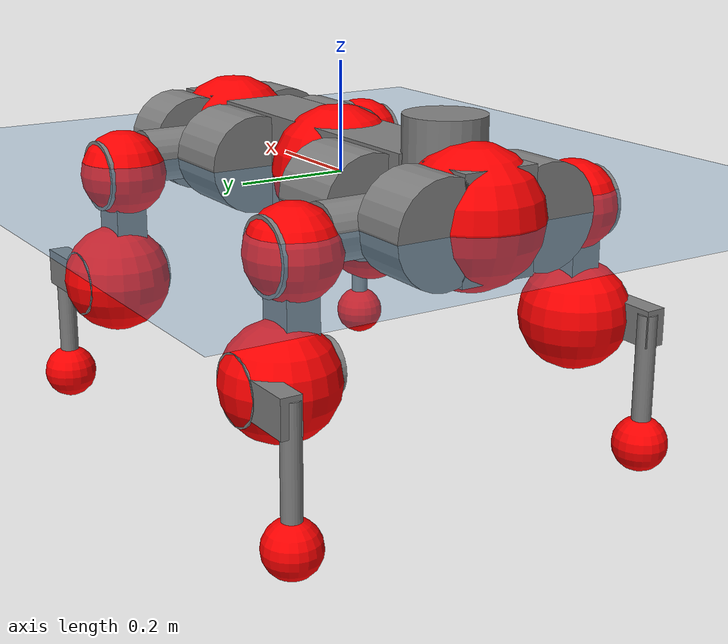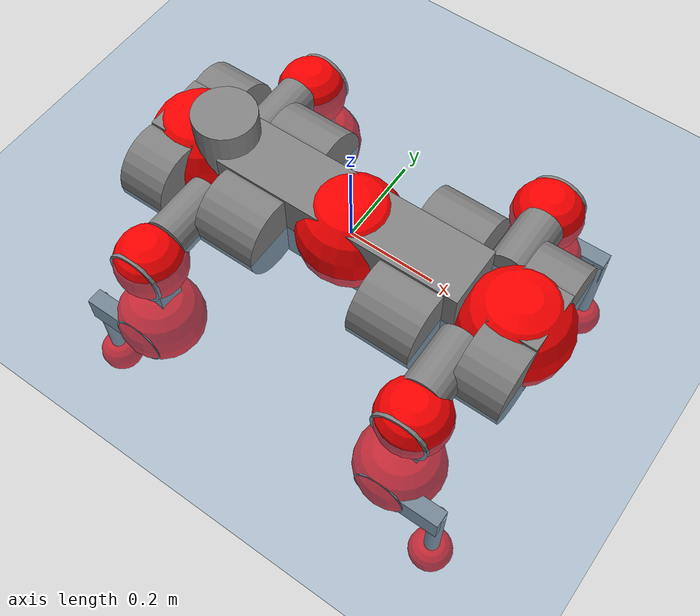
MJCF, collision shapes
<mujoco model="anymal_c">
  <compiler angle="radian" assetdir="assets" balanceinertia="true" inertiafromgeom="false"/>

  <option timestep="0.005" density="1.2" viscosity="2e-05"/>

  <size nkey="1"/>

  <visual>
    <quality shadowsize="8192"/>
    <map shadowclip="0.5"/>
  </visual>

  <default>
    <default class="/">
      <material specular="0" shininess="0.25"/>
      <geom contype="0" conaffinity="0" group="1" solref="-1000 -80"/>
      <site size="0.01 0.005 0.005" group="5"/>
      <general forcelimited="true" forcerange="-80 80" biastype="affine" gainprm="80" biasprm="0 -80 -2"/>
      <default class="anymal_c">
        <joint armature="0.01" damping="0.01" frictionloss="0.1"/>
        <default class="visual">
          <geom type="mesh" group="2"/>
          <default class="visual_zflip"/>
        </default>
        <default class="collision">
          <geom type="cylinder" group="3"/>
          <default class="foot">
            <geom size="0.03 0 0" type="sphere" condim="6" priority="1" friction="0.8 0.02 0.01" solimp="0.015 1 0.03"/>
          </default>
        </default>
      </default>
      <default class="reward_collision_sphere">
        <geom group="5" rgba="1 0 0 1"/>
      </default>
    </default>
  </default>

  <asset>
    <texture type="skybox" colorspace="auto" name="//unnamed_texture_0" builtin="gradient" rgb1="0.95 0.95 0.95" rgb2="0.95 0.95 0.95" width="100" height="600"/>
    <texture type="2d" colorspace="auto" name="texplane" builtin="checker" rgb1="0.345 0.575 0.748" rgb2="0.345 0.575 0.748" markrgb="1 1 1" width="512" height="512"/>
    <texture type="2d" colorspace="linear" name="base" file="base.png"/>
    <texture type="2d" colorspace="linear" name="top_shell" file="top_shell.png"/>
    <texture type="2d" colorspace="linear" name="bottom_shell" file="bottom_shell.png"/>
    <texture type="2d" colorspace="linear" name="remote" file="remote.png"/>
    <texture type="2d" colorspace="linear" name="hatch" file="hatch.png"/>
    <texture type="2d" colorspace="linear" name="handle" file="handle.png"/>
    <texture type="2d" colorspace="linear" name="face" file="face.png"/>
    <texture type="2d" colorspace="linear" name="battery" file="battery.png"/>
    <texture type="2d" colorspace="linear" name="lidar_cage" file="lidar_cage.png"/>
    <texture type="2d" colorspace="linear" name="depth_camera" file="depth_camera.png"/>
    <texture type="2d" colorspace="linear" name="wide_angle_camera" file="wide_angle_camera.png"/>
    <texture type="2d" colorspace="linear" name="lidar" file="lidar.png"/>
    <texture type="2d" colorspace="linear" name="drive" file="drive.png"/>
    <texture type="2d" colorspace="linear" name="hip_l" file="hip_l.png"/>
    <texture type="2d" colorspace="linear" name="shank_l" file="shank_l.png"/>
    <texture type="2d" colorspace="linear" name="foot" file="foot.png"/>
    <texture type="2d" colorspace="linear" name="thigh" file="thigh.png"/>
    <texture type="2d" colorspace="linear" name="shank_r" file="shank_r.png"/>
    <texture type="2d" colorspace="linear" name="hip_r" file="hip_r.png"/>
    <material name="MatPlane" class="/" texture="texplane" texuniform="true" texrepeat="2 2" specular="0.9" shininess="0.5"/>
    <material name="black_plastic" class="/" rgba="0.007 0.007 0.007 1"/>
    <material name="green" class="/" rgba="0.052 0.178 0.033 1"/>
    <material name="red" class="/" rgba="0.178 0.006 0.005 1"/>
    <material name="yellow" class="/" rgba="0.178 0.119 0.006 1"/>
    <material name="lwl" class="/" rgba="0.8 0.8 0.8 1"/>
    <material name="base" class="/" texture="base"/>
    <material name="top_shell" class="/" texture="top_shell"/>
    <material name="bottom_shell" class="/" texture="bottom_shell"/>
    <material name="hip_l" class="/" texture="hip_l"/>
    <material name="thigh" class="/" texture="thigh"/>
    <material name="shank_l" class="/" texture="shank_l"/>
    <material name="foot" class="/" texture="foot"/>
    <material name="hip_r" class="/" texture="hip_r"/>
    <material name="shank" class="/" texture="shank_r"/>
    <material name="hatch" class="/" texture="hatch"/>
    <material name="remote" class="/" texture="remote"/>
    <material name="handle" class="/" texture="handle"/>
    <material name="face" class="/" texture="face"/>
    <material name="depth_camera" class="/" texture="depth_camera"/>
    <material name="wide_angle_camera" class="/" texture="wide_angle_camera"/>
    <material name="battery" class="/" texture="battery"/>
    <material name="lidar_cage" class="/" texture="lidar_cage"/>
    <material name="lidar" class="/" texture="lidar"/>
    <material name="drive" class="/" texture="drive"/>
    <mesh name="base_0" class="/" file="base_0.obj"/>
    <mesh name="base_1" class="/" file="base_1.obj"/>
    <mesh name="base_2" class="/" file="base_2.obj"/>
    <mesh name="base_3" class="/" file="base_3.obj"/>
    <mesh name="base_4" class="/" file="base_4.obj"/>
    <mesh name="base_5" class="/" file="base_5.obj"/>
    <mesh name="top_shell" class="/" file="top_shell.obj"/>
    <mesh name="bottom_shell" class="/" file="bottom_shell.obj"/>
    <mesh name="remote" class="/" file="remote.obj"/>
    <mesh name="handle" class="/" file="handle.obj"/>
    <mesh name="face" class="/" file="face.obj"/>
    <mesh name="wide_angle_camera" class="/" file="wide_angle_camera.obj"/>
    <mesh name="depth_camera" class="/" file="depth_camera.obj"/>
    <mesh name="battery" class="/" file="battery.obj"/>
    <mesh name="lidar_cage" class="/" file="lidar_cage.obj"/>
    <mesh name="lidar" class="/" file="lidar.obj"/>
    <mesh name="drive" class="/" file="drive.obj"/>
    <mesh name="hip_l" class="/" file="hip_l.obj"/>
    <mesh name="thigh" class="/" file="thigh.obj"/>
    <mesh name="shank_l" class="/" file="shank_l.obj"/>
    <mesh name="foot" class="/" file="foot.obj"/>
    <mesh name="hip_r" class="/" file="hip_r.obj"/>
    <mesh name="hatch" class="/" file="hatch.obj"/>
    <mesh name="shank_r" class="/" file="shank_r.obj"/>
  </asset>

  <worldbody>
    <geom name="floor" class="/" size="100 100 0.125" type="plane" group="0" material="MatPlane"/>
    <light name="toplight_shadow" class="/" pos="0 0 5" dir="0.0990148 0.0990148 -0.990148" type="directional" ambient="0.04 0.04 0.04" diffuse="0.55 0.55 0.55" specular="0.12 0.12 0.12"/>
    <light name="toplight_fill" class="/" pos="0 0 5" dir="0.0990148 0.0990148 -0.990148" type="directional" castshadow="false" ambient="0.04 0.04 0.04" diffuse="0.3 0.3 0.3" specular="0.08 0.08 0.08"/>
    <body name="trunk" childclass="anymal_c" pos="-0.00161679 0.00673028 0.00233719" quat="0.999994 0.000511131 -0.00119901 0.00313538">
      <inertial pos="0.0075309 0.0116372 0.0264035" quat="0.483511 0.489835 0.511462 0.514476" mass="20.0535" diaginertia="0.423834 4.25521 0.0361323"/>
      <joint name="//unnamed_joint_0" type="free" armature="0" damping="0" frictionloss="0"/>
      <geom name="//unnamed_geom_1" class="visual" material="green" mesh="base_0"/>
      <geom name="//unnamed_geom_2" class="visual" material="yellow" mesh="base_1"/>
      <geom name="//unnamed_geom_3" class="visual" material="red" mesh="base_2"/>
      <geom name="//unnamed_geom_4" class="visual" material="black_plastic" mesh="base_3"/>
      <geom name="//unnamed_geom_5" class="visual" material="lwl" mesh="base_4"/>
      <geom name="//unnamed_geom_6" class="visual" material="base" mesh="base_5"/>
      <geom name="trunk_1" class="collision" size="0.291499 0.0703618 0.0904652" type="box"/>
      <geom name="trunk_2" class="collision" size="0.0904652 0.0728748" pos="0.189845 0.101268 0" quat="0.707107 0 0.707107 0"/>
      <geom name="trunk_3" class="collision" size="0.0904652 0.0728748" pos="-0.189845 0.101268 0" quat="0.707107 0 0.707107 0"/>
      <geom name="trunk_4" class="collision" size="0.0904652 0.0728748" pos="0.189845 -0.101268 0" quat="0.707107 0 0.707107 0"/>
      <geom name="trunk_5" class="collision" size="0.0904652 0.0728748" pos="-0.189845 -0.101268 0" quat="0.707107 0 0.707107 0"/>
      <geom name="//unnamed_geom_12" class="visual" material="top_shell" mesh="top_shell"/>
      <geom name="//unnamed_geom_13" class="visual" material="bottom_shell" mesh="bottom_shell"/>
      <geom name="//unnamed_geom_14" class="visual" material="remote" mesh="remote"/>
      <geom name="//unnamed_geom_15" class="visual" material="handle" mesh="handle"/>
      <geom name="//unnamed_geom_16" class="visual" pos="0.361796 0 0" quat="1 0 0 0" material="face" mesh="face"/>
      <geom name="trunk_6" class="collision" size="0.0552843 0.0703618 0.0904652" pos="0.409803 0 0" type="box"/>
      <geom name="//unnamed_geom_18" class="collision" size="0.0904652 0.0552843" pos="0.409803 0.101268 0" quat="0.707107 0 0.707107 0"/>
      <geom name="//unnamed_geom_19" class="collision" size="0.0904652 0.0552843" pos="0.409803 -0.101268 0" quat="0.707107 0 0.707107 0"/>
      <geom name="//unnamed_geom_20" class="visual" pos="0.402944 0 -0.018978" quat="0.965926 0 0.258819 0" material="depth_camera" mesh="depth_camera"/>
      <geom name="//unnamed_geom_21" class="visual" pos="0.447772 0 0.0104187" material="wide_angle_camera" mesh="wide_angle_camera"/>
      <geom name="//unnamed_geom_22" class="visual_zflip" pos="-0.361796 0 0" quat="0 0 0 1" material="face" mesh="face"/>
      <geom name="trunk_7" class="collision" size="0.0552843 0.0703618 0.0904652" pos="-0.409803 0 0" quat="0 0 0 1" type="box"/>
      <geom name="//unnamed_geom_24" class="collision" size="0.0904652 0.0552843" pos="-0.409803 -0.101268 0" quat="0 -0.707107 0 0.707107"/>
      <geom name="//unnamed_geom_25" class="collision" size="0.0904652 0.0552843" pos="-0.409803 0.101268 0" quat="0 -0.707107 0 0.707107"/>
      <geom name="//unnamed_geom_26" class="visual" pos="-0.402944 0 -0.018978" quat="0 -0.258819 0 0.965926" material="depth_camera" mesh="depth_camera"/>
      <geom name="//unnamed_geom_27" class="visual_zflip" pos="-0.447772 0 0.0104187" quat="0 0 0 1" material="wide_angle_camera" mesh="wide_angle_camera"/>
      <geom name="//unnamed_geom_28" class="visual" material="battery" mesh="battery"/>
      <geom name="//unnamed_geom_29" class="visual" pos="0 0.118137 0.0215622" quat="0.683013 -0.183013 0.183013 0.683013" material="depth_camera" mesh="depth_camera"/>
      <geom name="//unnamed_geom_30" class="visual" pos="0 -0.118137 0.0215622" quat="0.683013 0.183013 0.183013 -0.683013" material="depth_camera" mesh="depth_camera"/>
      <geom name="//unnamed_geom_31" class="visual" pos="-0.317717 0 0.0511537" quat="1 0 0 0" material="lidar_cage" mesh="lidar_cage"/>
      <geom name="trunk_8" class="collision" size="0.0703618 0.0603102" pos="-0.317717 0 0.0929118"/>
      <geom name="//unnamed_geom_33" class="visual" pos="-0.317717 0.000225446 0.0989667" quat="0.707107 0 0 -0.707107" material="lidar" mesh="lidar"/>
      <geom name="//unnamed_geom_34" class="visual" pos="0.261768 0.150189 1.295e-08" quat="0.258819 0.965926 0 0" material="drive" mesh="drive"/>
      <geom name="//unnamed_geom_35" class="visual" pos="0.261768 -0.150189 -1.295e-08" quat="0.258819 -0.965926 0 0" material="drive" mesh="drive"/>
      <geom name="//unnamed_geom_36" class="visual" pos="-0.261768 0.150189 -1.295e-08" quat="0 0 0.965926 -0.258819" material="drive" mesh="drive"/>
      <geom name="//unnamed_geom_37" class="visual" pos="-0.261768 -0.150189 1.295e-08" quat="0 0 -0.965926 -0.258819" material="drive" mesh="drive"/>
      <geom name="//unnamed_geom_38" class="visual" pos="0.101251 0 0.0508057" quat="1 0 0 0" material="hatch" mesh="hatch"/>
      <geom name="//unnamed_geom_39" class="reward_collision_sphere" size="0.12062"/>
      <geom name="//unnamed_geom_40" class="reward_collision_sphere" size="0.12062" pos="0.392782 0 0"/>
      <geom name="//unnamed_geom_41" class="reward_collision_sphere" size="0.12062" pos="-0.392782 0 0"/>
      <site name="imu" pos="0.213937 0.0182689 0.0384547" size="0.0100517"/>
      <camera name="track" pos="0 -2.89338 0" quat="0.707107 0.707107 0 0" mode="trackcom"/>
      <camera name="ego_camera" pos="0.392782 0 -0.0278387" quat="-0.5 -0.5 0.5 0.5"/>
      <body name="LF_HIP" pos="0.262788 0.151326 -0.000671836" quat="0.259426 0.965763 0.000504505 -0.000296524">
        <inertial pos="0.049166 -0.0132139 -0.00435352" quat="-0.0708536 0.696682 -0.122302 0.703318" mass="2.84678" diaginertia="0.00289174 0.0324527 0.000522113"/>
        <joint name="LF_HAA" pos="0 0 0" axis="0.999908 -0.0133232 0.00250919" range="-0.619111 0.495492" armature="0.00996406" damping="0.0189406" frictionloss="0.0925678"/>
        <geom name="//unnamed_geom_42" class="visual" pos="0 0.000761791 -0.000125124" quat="0.258819 -0.965926 0 0" material="hip_l" mesh="hip_l"/>
        <geom name="//unnamed_geom_43" class="visual" pos="0.0522837 -0.0706416 -0.0352322" quat="0.183013 -0.683013 0.683013 0.183013" material="drive" mesh="drive"/>
        <geom name="//unnamed_geom_44" class="collision" size="0.0502585 0.0703618" pos="0.0522837 -0.0173021 -0.00480566" quat="-0.353553 -0.612372 0.612372 -0.353553"/>
        <body name="LF_THIGH" pos="0.0435673 -0.110119 -0.0309277" quat="0.182595 -0.678776 0.68681 0.184973">
          <inertial pos="0.0255197 -0.0120389 -0.170605" quat="0.991953 -0.0144507 -0.0779718 0.0986955" mass="2.97698" diaginertia="0.017524 0.165215 0.0006994"/>
          <joint name="LF_HFE" pos="0 0 0" axis="0.999378 0.0214508 0.0279894" range="-3.00142 3.35296" armature="0.00413647" damping="0.0109327" frictionloss="0.127593"/>
          <geom name="//unnamed_geom_45" class="visual" pos="-0.0114172 -1.79908e-05 0" quat="0.707107 0 0 -0.707107" material="thigh" mesh="thigh"/>
          <geom name="//unnamed_geom_46" class="collision" size="0.065336 0.0402068" pos="0.034914 0 0" quat="0.5 0.5 -0.5 -0.5"/>
          <geom name="//unnamed_geom_47" class="collision" size="0.0376938 0.0301551 0.142044" pos="0.0261855 0 -0.0983501" quat="0.707107 0 0 -0.707107" type="box"/>
          <geom name="//unnamed_geom_48" class="visual" pos="0.0875468 0 -0.198351" quat="1 0 0 0" material="drive" mesh="drive"/>
          <geom name="//unnamed_geom_49" class="collision" size="0.0502585 0.0703618" pos="0.0264473 0 -0.198351" quat="0.707107 0 0.707107 0"/>
          <geom name="//unnamed_geom_50" class="reward_collision_sphere" size="0.0804135" pos="0.0218212 0 0"/>
          <body name="LF_SHANK" pos="0.0865588 -0.00127209 -0.201985" quat="1 0.000559516 -0.000309428 0.000117628">
            <inertial pos="0.0146324 -0.0823779 -0.0476044" quat="0.993907 -0.104782 0.00374597 -0.0339853" mass="0.622087" diaginertia="0.00556851 0.054755 0.000195455"/>
            <joint name="LF_KFE" pos="0 0 0" axis="0.999965 0.00837043 -0.000502893" range="-3.38365 2.97215" armature="0.0129709" damping="0.0544529" frictionloss="0.0875583"/>
            <geom name="//unnamed_geom_51" class="visual" pos="-0.00372289 -0.0198506 0" quat="0.707107 0 0 -0.707107" material="shank_l" mesh="shank_l"/>
            <geom name="LF_kfe_act" class="collision" size="0.0603102 0.0201034" pos="0.017457 0 0" quat="0.5 0.5 -0.5 -0.5"/>
            <geom name="//unnamed_geom_53" class="collision" size="0.0577962 0.0339245 0.0190982" pos="0.017457 -0.0831832 0" quat="0.5 0.5 -0.5 -0.5" type="box"/>
            <geom name="//unnamed_geom_54" class="visual" pos="0.0113916 -0.133633 -0.235217" quat="0.382683 0 0 -0.92388" material="foot" mesh="foot"/>
            <geom name="LF_calf" class="collision" size="0.0175905 0.141982" pos="0.0113907 -0.127236 -0.117608" quat="0.707107 0 0 -0.707107"/>
            <geom name="LF_foot" class="foot" size="0.0352238" pos="0.0113907 -0.127236 -0.219557" quat="0.707107 0 0 -0.707107"/>
            <geom name="//unnamed_geom_57" class="reward_collision_sphere" size="0.100517" pos="-0.0436425 0 0"/>
            <geom name="//unnamed_geom_58" class="reward_collision_sphere" size="0.0502585" pos="0.0113907 -0.127236 -0.219557"/>
            <site name="LF_foot" class="foot" pos="0.0113907 -0.127236 -0.219557" quat="0.707107 0 0 -0.707107" size="0.0100517"/>
          </body>
        </body>
      </body>
      <body name="RF_HIP" pos="0.27374 -0.146164 0.012393" quat="0.25884 -0.96592 0.000440178 -0.000224314">
        <inertial pos="0.0495177 0.0187906 -0.00180947" quat="0.159409 0.691456 0.163249 0.68544" mass="2.99682" diaginertia="0.00330092 0.0311522 0.000528391"/>
        <joint name="RF_HAA" pos="0 0 0" axis="0.999637 0.0266222 -0.00406527" stiffness="0.0615906" range="-0.478033 0.533038" armature="0.0118721" damping="0.0255141" frictionloss="0.0906049"/>
        <geom name="//unnamed_geom_59" class="visual" pos="0 -0.000761785 -0.000125123" quat="0.258819 0.965926 0 0" material="hip_r" mesh="hip_r"/>
        <geom name="//unnamed_geom_60" class="visual" pos="0.0522837 0.0706416 -0.0352322" quat="0.183013 0.683013 0.683013 -0.183013" material="drive" mesh="drive"/>
        <geom name="//unnamed_geom_61" class="collision" size="0.0502585 0.0703618" pos="0.0522837 0.0173021 -0.00480566" quat="-0.353553 0.612372 0.612372 0.353553"/>
        <body name="RF_THIGH" pos="0.0558956 0.101946 -0.0194445" quat="0.183013 0.683012 0.683012 -0.183016">
          <inertial pos="0.0221862 0.00645083 -0.181566" quat="0.992122 0.00795387 -0.0872388 0.0895576" mass="3.01132" diaginertia="0.0164722 0.187494 0.000676749"/>
          <joint name="RF_HFE" pos="0 0 0" axis="0.999995 -0.00296276 0.00130409" range="-3.17142 3.08301" armature="0.0146116" damping="0" frictionloss="0.13134"/>
          <geom name="//unnamed_geom_62" class="visual" pos="-0.0114172 -1.79908e-05 0" quat="0.707107 0 0 -0.707107" material="thigh" mesh="thigh"/>
          <geom name="//unnamed_geom_63" class="collision" size="0.065336 0.0402068" pos="0.034914 0 0" quat="0.5 0.5 0.5 0.5"/>
          <geom name="//unnamed_geom_64" class="collision" size="0.0376938 0.0301551 0.142044" pos="0.0261855 0 -0.0983501" quat="0.707107 0 0 0.707107" type="box"/>
          <geom name="//unnamed_geom_65" class="visual" pos="0.0875468 0 -0.198351" quat="1 0 0 0" material="drive" mesh="drive"/>
          <geom name="//unnamed_geom_66" class="collision" size="0.0502585 0.0703618" pos="0.0264473 0 -0.198351" quat="0.707107 0 0.707107 0"/>
          <geom name="//unnamed_geom_67" class="reward_collision_sphere" size="0.0804135" pos="0.0218212 0 0"/>
          <body name="RF_SHANK" pos="0.0882868 -0.00596613 -0.208274" quat="1 6.71887e-05 0.000500611 -0.000228368">
            <inertial pos="0.0109456 0.0820517 -0.0550523" quat="0.992011 0.123414 -0.0171587 0.0196908" mass="0.506834" diaginertia="0.00456114 0.0452802 0.000166918"/>
            <joint name="RF_KFE" pos="0 0 0" axis="0.999994 1.50806e-05 0.00355384" stiffness="0.000936303" range="-3.19268 3.104" armature="0.0100882" damping="0.0635526" frictionloss="0.115985"/>
            <geom name="//unnamed_geom_68" class="visual" pos="-0.00372287 0.0198506 0" quat="0.707107 0 0 0.707107" material="shank" mesh="shank_r"/>
            <geom name="RF_kfe_act" class="collision" size="0.0603102 0.0201034" pos="0.017457 0 0" quat="0.5 0.5 0.5 0.5"/>
            <geom name="//unnamed_geom_70" class="collision" size="0.0577962 0.0339245 0.0190982" pos="0.017457 0.0831832 0" quat="0.5 0.5 0.5 0.5" type="box"/>
            <geom name="//unnamed_geom_71" class="visual" pos="0.0113898 0.133633 -0.235217" quat="0.382683 0 0 0.92388" material="foot" mesh="foot"/>
            <geom name="RF_calf" class="collision" size="0.0175905 0.141982" pos="0.0113907 0.127236 -0.117608" quat="0.707107 0 0 0.707107"/>
            <geom name="RF_foot" class="foot" size="0.0435647" pos="0.0113907 0.127236 -0.219557" quat="0.707107 0 0 0.707107"/>
            <geom name="//unnamed_geom_74" class="reward_collision_sphere" size="0.100517" pos="-0.0436425 0 0"/>
            <geom name="//unnamed_geom_75" class="reward_collision_sphere" size="0.0502585" pos="0.0113907 0.127236 -0.219557"/>
            <site name="RF_foot" class="foot" pos="0.0113907 0.127236 -0.219557" quat="0.707107 0 0 0.707107" size="0.0100517"/>
          </body>
        </body>
      </body>
      <body name="LH_HIP" pos="-0.259735 0.145833 -0.00787441" quat="0.000317851 0.000519811 0.965793 -0.259314">
        <inertial pos="0.0488042 0.0230943 -0.0117998" quat="0.140077 0.675781 0.127163 0.71241" mass="3.39637" diaginertia="0.00312225 0.0343904 0.000521432"/>
        <joint name="LH_HAA" pos="0 0 0" axis="0.99983 0.0149819 -0.0107347" range="-0.674149 0.778039" armature="0.0105572" damping="0" frictionloss="0.0600561"/>
        <geom name="//unnamed_geom_76" class="visual" pos="0 -0.000761785 -0.000125123" quat="-0.258819 -0.965926 0 0" material="hip_r" mesh="hip_r"/>
        <geom name="//unnamed_geom_77" class="visual" pos="0.0522837 0.0706416 -0.0352322" quat="0.183013 0.683013 0.683013 -0.183013" material="drive" mesh="drive"/>
        <geom name="//unnamed_geom_78" class="collision" size="0.0502585 0.0703618" pos="0.0522837 0.0173021 -0.00480566" quat="-0.353553 0.612372 0.612372 0.353553"/>
        <body name="LH_THIGH" pos="0.0502368 0.109747 -0.0305725" quat="0.179162 0.680875 0.68603 -0.183503">
          <inertial pos="0.0284756 -0.0127858 -0.173746" quat="0.994702 -0.0132113 -0.0418871 0.0929472" mass="3.55983" diaginertia="0.0162912 0.175899 0.000597589"/>
          <joint name="LH_HFE" pos="0 0 0" axis="0.998189 0.0217833 -0.0560747" range="-3.14836 3.10861" armature="0.00668407" damping="0" frictionloss="0.127767"/>
          <geom name="//unnamed_geom_79" class="visual" pos="-0.0114172 -1.79908e-05 0" quat="0.707107 0 0 -0.707107" material="thigh" mesh="thigh"/>
          <geom name="//unnamed_geom_80" class="collision" size="0.065336 0.0402068" pos="0.034914 0 0" quat="0.5 0.5 -0.5 -0.5"/>
          <geom name="//unnamed_geom_81" class="collision" size="0.0376938 0.0301551 0.142044" pos="0.0261855 0 -0.0983501" quat="0.707107 0 0 -0.707107" type="box"/>
          <geom name="//unnamed_geom_82" class="visual" pos="0.0875468 0 -0.198351" quat="1 0 0 0" material="drive" mesh="drive"/>
          <geom name="//unnamed_geom_83" class="collision" size="0.0502585 0.0703618" pos="0.0264473 0 -0.198351" quat="0.707107 0 0.707107 0"/>
          <geom name="//unnamed_geom_84" class="reward_collision_sphere" size="0.0804135" pos="0.0218212 0 0"/>
          <body name="LH_SHANK" pos="0.0915571 -0.000446812 -0.205739" quat="0.999997 0.000578409 -0.00220457 0.00122406">
            <inertial pos="0.00611625 0.0797223 -0.0571074" quat="0.992519 0.118262 -0.00294211 0.0301769" mass="0.612346" diaginertia="0.00560156 0.0638585 0.000200727"/>
            <joint name="LH_KFE" pos="0 0 0" axis="0.999893 -0.00986709 0.0108141" range="-3.37469 3.16331" armature="0.00395749" damping="0" frictionloss="0.13268"/>
            <geom name="//unnamed_geom_85" class="visual" pos="-0.00372287 0.0198506 0" quat="-0.707107 0 0 -0.707107" material="shank" mesh="shank_r"/>
            <geom name="LH_kfe_act" class="collision" size="0.0603102 0.0201034" pos="0.017457 0 0" quat="0.5 0.5 -0.5 -0.5"/>
            <geom name="//unnamed_geom_87" class="collision" size="0.0577962 0.0339245 0.0190982" pos="0.017457 0.0831832 0" quat="0.5 0.5 -0.5 -0.5" type="box"/>
            <geom name="//unnamed_geom_88" class="visual" pos="0.0113898 0.133633 -0.235217" quat="-0.382683 0 0 -0.92388" material="foot" mesh="foot"/>
            <geom name="LH_calf" class="collision" size="0.0175905 0.141982" pos="0.0113907 0.127236 -0.117608" quat="0.707107 0 0 -0.707107"/>
            <geom name="LH_foot" class="foot" size="0.0345406" pos="0.0113907 0.127236 -0.219557" quat="0.707107 0 0 -0.707107"/>
            <geom name="//unnamed_geom_91" class="reward_collision_sphere" size="0.100517" pos="-0.0436425 0 0"/>
            <geom name="//unnamed_geom_92" class="reward_collision_sphere" size="0.0502585" pos="0.0113907 0.127236 -0.219557"/>
            <site name="LH_foot" class="foot" pos="0.0113907 0.127236 -0.219557" quat="0.707107 0 0 -0.707107" size="0.0100517"/>
          </body>
        </body>
      </body>
      <body name="RH_HIP" pos="-0.250072 -0.151519 -0.00223002" quat="-0.00221081 -0.00112836 -0.967407 -0.253213">
        <inertial pos="0.0506377 -0.0198513 -0.00614193" quat="-0.124908 0.710184 -0.128194 0.680884" mass="2.98032" diaginertia="0.00312683 0.0320526 0.000478008"/>
        <joint name="RH_HAA" pos="0 0 0" axis="0.999982 0.00442643 -0.00395783" range="-0.704681 0.352409" armature="0.0048613" damping="0.0254088" frictionloss="0.0701516"/>
        <geom name="//unnamed_geom_93" class="visual" pos="0 0.000761791 -0.000125124" quat="-0.258819 0.965926 0 0" material="hip_l" mesh="hip_l"/>
        <geom name="//unnamed_geom_94" class="visual" pos="0.0522837 -0.0706416 -0.0352322" quat="-0.183013 0.683013 -0.683013 -0.183013" material="drive" mesh="drive"/>
        <geom name="//unnamed_geom_95" class="collision" size="0.0502585 0.0703618" pos="0.0522837 -0.0173021 -0.00480566" quat="0.353553 0.612372 -0.612372 0.353553"/>
        <body name="RH_THIGH" pos="0.0592876 -0.113263 -0.0264393" quat="-0.184606 0.682435 -0.683273 -0.182595">
          <inertial pos="0.0286142 0.0078758 -0.171814" quat="0.993176 -0.00523808 -0.0802349 0.0844776" mass="2.98597" diaginertia="0.0149922 0.191398 0.000728016"/>
          <joint name="RH_HFE" pos="0 0 0" axis="0.999986 0.000601131 -0.0052088" range="-3.11181 2.8942" armature="0.0158399" damping="0" frictionloss="0.0952597"/>
          <geom name="//unnamed_geom_96" class="visual" pos="-0.0114172 -1.79908e-05 0" quat="0.707107 0 0 -0.707107" material="thigh" mesh="thigh"/>
          <geom name="//unnamed_geom_97" class="collision" size="0.065336 0.0402068" pos="0.034914 0 0" quat="0.5 0.5 0.5 0.5"/>
          <geom name="//unnamed_geom_98" class="collision" size="0.0376938 0.0301551 0.142044" pos="0.0261855 0 -0.0983501" quat="0.707107 0 0 0.707107" type="box"/>
          <geom name="//unnamed_geom_99" class="visual" pos="0.0875468 0 -0.198351" quat="1 0 0 0" material="drive" mesh="drive"/>
          <geom name="//unnamed_geom_100" class="collision" size="0.0502585 0.0703618" pos="0.0264473 0 -0.198351" quat="0.707107 0 0.707107 0"/>
          <geom name="//unnamed_geom_101" class="reward_collision_sphere" size="0.0804135" pos="0.0218212 0 0"/>
          <body name="RH_SHANK" pos="0.0819564 8.05499e-05 -0.202453" quat="1 -0.000252608 -3.43382e-05 -2.79077e-05">
            <inertial pos="0.0103455 -0.0883525 -0.0580814" quat="0.992983 -0.115284 0.000847492 -0.026321" mass="0.551294" diaginertia="0.00505468 0.0555819 0.000182423"/>
            <joint name="RH_KFE" pos="0 0 0" axis="0.9992 0.022729 0.0328962" range="-3.33609 3.04871" armature="0.0103722" damping="0" frictionloss="0.0738723"/>
            <geom name="//unnamed_geom_102" class="visual" pos="-0.00372289 -0.0198506 0" quat="0.707107 0 0 -0.707107" material="shank_l" mesh="shank_l"/>
            <geom name="RH_kfe_act" class="collision" size="0.0603102 0.0201034" pos="0.017457 0 0" quat="0.5 0.5 0.5 0.5"/>
            <geom name="//unnamed_geom_104" class="collision" size="0.0577962 0.0339245 0.0190982" pos="0.017457 -0.0831832 0" quat="0.5 0.5 0.5 0.5" type="box"/>
            <geom name="//unnamed_geom_105" class="visual" pos="0.0113916 -0.133633 -0.235217" quat="0.382683 0 0 -0.92388" material="foot" mesh="foot"/>
            <geom name="RH_calf" class="collision" size="0.0175905 0.141982" pos="0.0113907 -0.127236 -0.117608" quat="0.707107 0 0 0.707107"/>
            <geom name="RH_foot" class="foot" size="0.0161104" pos="0.0113907 -0.127236 -0.219557" quat="0.707107 0 0 0.707107"/>
            <geom name="//unnamed_geom_108" class="reward_collision_sphere" size="0.100517" pos="-0.0436425 0 0"/>
            <geom name="//unnamed_geom_109" class="reward_collision_sphere" size="0.0502585" pos="0.0113907 -0.127236 -0.219557"/>
            <site name="RH_foot" class="foot" pos="0.0113907 -0.127236 -0.219557" quat="0.707107 0 0 0.707107" size="0.0100517"/>
          </body>
        </body>
      </body>
    </body>
  </worldbody>

  <contact>
    <pair class="/" geom1="floor" geom2="LF_foot" name="//unnamed_contact_0"/>
    <pair class="/" geom1="floor" geom2="RF_foot" name="//unnamed_contact_1"/>
    <pair class="/" geom1="floor" geom2="LH_foot" name="//unnamed_contact_2"/>
    <pair class="/" geom1="floor" geom2="RH_foot" name="//unnamed_contact_3"/>
  </contact>

  <actuator>
    <general name="LF_HAA" class="/" joint="LF_HAA" forcerange="-67.5483 67.5483" gainprm="76.4841" biasprm="0 -76.4841 -2.1028"/>
    <general name="LF_HFE" class="/" joint="LF_HFE" forcerange="-83.0286 83.0286" gainprm="76.4841" biasprm="0 -76.4841 -2.1028"/>
    <general name="LF_KFE" class="/" joint="LF_KFE" forcerange="-85.258 85.258" gainprm="76.4841" biasprm="0 -76.4841 -2.1028"/>
    <general name="RF_HAA" class="/" joint="RF_HAA" forcerange="-95.0134 95.0134" gainprm="76.4841" biasprm="0 -76.4841 -2.1028"/>
    <general name="RF_HFE" class="/" joint="RF_HFE" forcerange="-80.327 80.327" gainprm="76.4841" biasprm="0 -76.4841 -2.1028"/>
    <general name="RF_KFE" class="/" joint="RF_KFE" forcerange="-103.275 103.275" gainprm="76.4841" biasprm="0 -76.4841 -2.1028"/>
    <general name="LH_HAA" class="/" joint="LH_HAA" forcerange="-88.2717 88.2717" gainprm="76.4841" biasprm="0 -76.4841 -2.1028"/>
    <general name="LH_HFE" class="/" joint="LH_HFE" forcerange="-79.3004 79.3004" gainprm="76.4841" biasprm="0 -76.4841 -2.1028"/>
    <general name="LH_KFE" class="/" joint="LH_KFE" forcerange="-75.1066 75.1066" gainprm="76.4841" biasprm="0 -76.4841 -2.1028"/>
    <general name="RH_HAA" class="/" joint="RH_HAA" forcerange="-94.0326 94.0326" gainprm="76.4841" biasprm="0 -76.4841 -2.1028"/>
    <general name="RH_HFE" class="/" joint="RH_HFE" forcerange="-70.916 70.916" gainprm="76.4841" biasprm="0 -76.4841 -2.1028"/>
    <general name="RH_KFE" class="/" joint="RH_KFE" forcerange="-49.987 49.987" gainprm="76.4841" biasprm="0 -76.4841 -2.1028"/>
  </actuator>

  <sensor>
    <gyro site="imu" name="imu_angular_velocity"/>
    <velocimeter site="imu" name="imu_linear_velocity"/>
    <framelinvel objtype="site" objname="LF_foot" name="LF_foot_global_linear_velocity"/>
    <framelinvel objtype="site" objname="RF_foot" name="RF_foot_global_linear_velocity"/>
    <framelinvel objtype="site" objname="LH_foot" name="LH_foot_global_linear_velocity"/>
    <framelinvel objtype="site" objname="RH_foot" name="RH_foot_global_linear_velocity"/>
  </sensor>

  <keyframe>
    <key name="home" qpos="0 0 0.55 1 0 0 0 0 0.4 -0.8 0 -0.4 0.8 0 -0.4 0.8 0 0.4 -0.8"/>
  </keyframe>
</mujoco>
